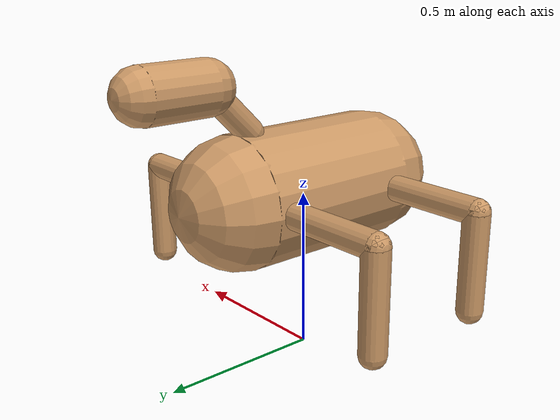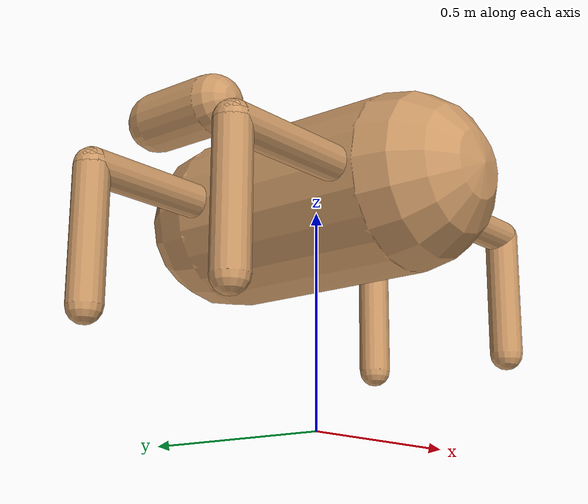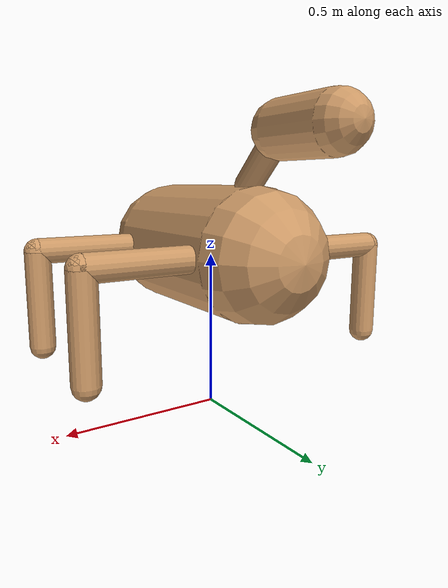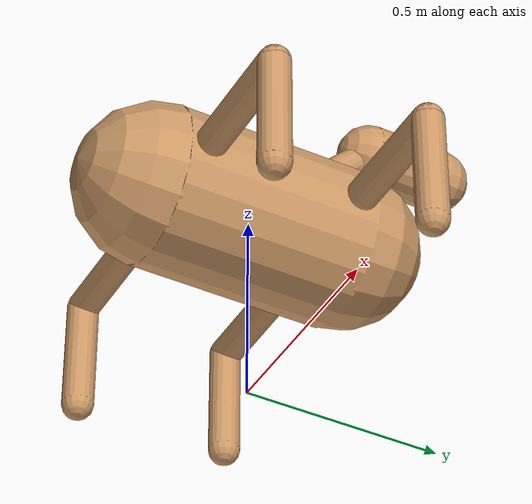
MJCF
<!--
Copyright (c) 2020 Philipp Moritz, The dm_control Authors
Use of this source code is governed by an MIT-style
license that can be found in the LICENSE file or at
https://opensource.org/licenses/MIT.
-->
<mujoco model="joe">
  <default>
    <motor ctrlrange="-1.0 1.0" ctrllimited="true" gear="75" />
    <geom friction="1 0.5 0.5" solref=".02 1" solimp="0 .8 .01" material="self" density="50.0" />
    <joint limited="true" armature="1" damping="1" stiffness="1" solreflimit=".04 1"
      solimplimit="0 .8 .03" />
    <default class="rangefinder">
      <site type="capsule" size=".05 .5" rgba="1 0 0 .4" group="4" />
    </default>
  </default>
  <asset>
    <material name="self" rgba=".8 .6 .4 1" />
    <texture name="grid" type="2d" builtin="checker" width="512" height="512" rgb1=".1 .2 .3"
      rgb2=".2 .3 .4" />
    <material name="grid" texture="grid" texrepeat="1 1" texuniform="true" reflectance=".2" />
  </asset>
  <worldbody>
    <camera name="sideon" pos="0 -10 5" fovy="45" mode="targetbody" target="torso" />
    <camera name="float_far" pos="-4 0 2" xyaxes="0 -1 0 .5 0 1" mode="trackcom" fovy="90" />
    <body name="torso" pos="0 0 0.522">
      <camera name="floating" pos="-2 0 1" xyaxes="0 -1 0 .5 0 1" mode="trackcom" fovy="90" />

      <site name="torso_touch" type="capsule" size="0.26" fromto="0 -0.25 0 0 0.25 0" rgba="0 0 1 1"
        group="4" />
      <geom name=":w
      torso_geom" type="capsule" size="0.2" fromto="0 -0.25 0 0 0.25 0"
        density="100.0" />
      <site name="torso_site" size="0.05" rgba="1 0 0 1" />

      <!-- sites that visualize the x-y axis of the ant body, good for debugging -->
      <site name="x_pos" type="capsule" pos="0.5 0 0" size=".05 .5" zaxis="1 0 0" rgba="1 0 0 1"
        group="5" />
      <site name="x_neg" type="capsule" pos="-0.5 0 0" size=".05 .5" zaxis="-1 0 0" rgba="0 0 1 1"
        group="5" />
      <site name="y_pos" type="capsule" pos="0 0.5 0" size=".05 .5" zaxis="0 1 0" rgba="1 1 1 1"
        group="5" />
      <site name="y_neg" type="capsule" pos="0 -0.5 0" size=".05 .5" zaxis="0 -1 0" rgba="0 0 0 1"
        group="5" />
      <site name="port_site" pos=".5 0 0" size="0.5" rgba="1 0 0 1" group="5" />
      <site name="starboard_site" pos="-.5 0 0" size="0.5" rgba="0 1 0 1" group="5" />

      <body name="neck" pos="0 0.2 0.2" euler="45 0 0">
        <geom name="neck_geom" type="capsule" size="0.04" fromto="0 0 0 0 0.20 0" />
        <body name="head" pos="0 0.20 0" euler="-45 0 0">
          <joint name="neck_x" axis="1 0 0" range="-60 60" />
          <joint name="neck_y" axis="0 1 0" range="-60 60 " />
          <joint name="neck_z" axis="0 0 1" range="-60 60" />
          <camera name="egocentric" pos="0 .3 0" xyaxes="1 0 0 0 0 1" fovy="90" />
          <geom name="head_geom" type="capsule" size="0.08" fromto="0 0 0 0 0.20 0" />
          <body name="rangefinder" pos="0 0 -0.1" euler="0 0 90">
            <site name="rf_00" class="rangefinder" fromto=".41 -.02  .11 .34 0 .115" />
            <site name="rf_01" class="rangefinder" fromto=".41 -.01  .11 .34 0 .115" />
            <site name="rf_02" class="rangefinder" fromto=".41   0   .11 .34 0 .115" />
            <site name="rf_03" class="rangefinder" fromto=".41  .01  .11 .34 0 .115" />
            <site name="rf_04" class="rangefinder" fromto=".41  .02  .11 .34 0 .115" />
            <site name="rf_10" class="rangefinder" fromto=".41 -.02  .1  .36 0 .11" />
            <site name="rf_11" class="rangefinder" fromto=".41 -.02  .1  .36 0 .11" />
            <site name="rf_12" class="rangefinder" fromto=".41   0   .1  .36 0 .11" />
            <site name="rf_13" class="rangefinder" fromto=".41  .01  .1  .36 0 .11" />
            <site name="rf_14" class="rangefinder" fromto=".41  .02  .1  .36 0 .11" />
            <site name="rf_20" class="rangefinder" fromto=".41 -.02  .09 .38 0 .105" />
            <site name="rf_21" class="rangefinder" fromto=".41 -.01  .09 .38 0 .105" />
            <site name="rf_22" class="rangefinder" fromto=".41   0   .09 .38 0 .105" />
            <site name="rf_23" class="rangefinder" fromto=".41  .01  .09 .38 0 .105" />
            <site name="rf_24" class="rangefinder" fromto=".41  .02  .09 .38 0 .105" />
            <site name="rf_30" class="rangefinder" fromto=".41 -.02  .08 .4  0 .1" />
            <site name="rf_31" class="rangefinder" fromto=".41 -.01  .08 .4  0 .1" />
            <site name="rf_32" class="rangefinder" fromto=".41   0   .08 .4  0 .1" />
            <site name="rf_33" class="rangefinder" fromto=".41  .01  .08 .4  0 .1" />
            <site name="rf_34" class="rangefinder" fromto=".41  .02  .08 .4  0 .1" />
          </body>
        </body>
      </body>
      <body name="front_left_leg" pos="0.2 0.2 0">
        <joint name="front_left_hip_x" axis="1 0 0" range="-60 60" />
        <joint name="front_left_hip_y" axis="0 1 0" range="-60 60" />
        <joint name="front_left_hip_z" axis="0 0 1" range="-60 60" />
        <geom name="front_left_leg_geom" type="capsule" size="0.04" fromto="0.0 0.0 0.0 0.3 0.0 0.0" />
        <site name="front_left_leg_touch" type="capsule" size="0.05" fromto="0 0 0 0.3 0 0"
          rgba="1 1 0 0" />
        <body name="front_left_foot" pos="0.3 0 0">
          <joint name="front_left_ankle" type="hinge" pos="0.0 0.0 0.0" axis="0 1 0" range="-60 60" />
          <geom name="front_left_ankle_geom" type="capsule" size="0.04"
            fromto="0.0 0.0 0.0 0 0 -0.3" />
          <site name="front_left_ankle_touch" type="capsule" size="0.05" fromto="0 0 0 0 0 -0.3"
            rgba="1 1 0 0" />
        </body>
      </body>
      <body name="front_right_leg" pos="-0.2 0.2 0">
        <joint name="front_right_hip_x" axis="1 0 0" range="-60 60" />
        <joint name="front_right_hip_y" axis="0 1 0" range="-60 60" />
        <joint name="front_right_hip_z" axis="0 0 1" range="-60 60" />
        <geom name="front_right_leg_geom" type="capsule" size="0.04"
          fromto="0.0 0.0 0.0 -0.3 0.0 0.0" />
        <site name="front_right_leg_touch" type="capsule" size="0.05" fromto="0 0 0 -0.3 0 0"
          rgba="1 1 0 0" />
        <body name="front_right_foot" pos="-0.3 0 0">
          <joint name="front_right_ankle" type="hinge" pos="0.0 0.0 0.0" axis="0 1 0" range="-60 60" />
          <geom name="front_right_ankle_geom" type="capsule" size="0.04"
            fromto="0.0 0.0 0.0 0 0 -0.3" />
          <site name="front_right_ankle_touch" type="capsule" size="0.05"
            fromto="0.0 0.0 0.0 0.0 0.0 -0.3" rgba="1 1 0 0" />
        </body>
      </body>

      <body name="back_left_leg" pos="0.2 -0.2 0">
        <joint name="back_left_hip_x" axis="1 0 0" range="-60 60" />
        <joint name="back_left_hip_y" axis="0 1 0" range="-60 60" />
        <joint name="back_left_hip_z" axis="0 0 1" range="-60 60" />
        <geom name="back_left_leg_geom" type="capsule" size="0.04" fromto="0.0 0.0 0.0 0.3 0.0 0.0" />
        <site name="back_left_leg_touch" type="capsule" size="0.05" fromto="0 0 0 0.3 0 0"
          rgba="1 1 0 0" />
        <body name="back_left_foot" pos="0.3 0 0">
          <joint name="back_left_ankle" type="hinge" pos="0.0 0.0 0.0" axis="0 1 0" range="-60 60" />
          <geom name="back_left_ankle_geom" type="capsule" size="0.04" fromto="0.0 0.0 0.0 0 0 -0.3" />
          <site name="back_left_ankle_touch" type="capsule" size="0.05" fromto="0 0 0 0 0 -0.3"
            rgba="1 1 0 0" />
        </body>
      </body>

      <body name="back_right_leg" pos="-0.2 -0.2 0">
        <joint name="back_right_hip_x" axis="1 0 0" range="-60 60" />
        <joint name="back_right_hip_y" axis="0 1 0" range="-60 60" />
        <joint name="back_right_hip_z" axis="0 0 1" range="-60 60" />
        <geom name="back_right_leg_geom" type="capsule" size="0.04"
          fromto="0.0 0.0 0.0 -0.3 0.0 0.0" />
        <site name="back_right_leg_touch" type="capsule" size="0.05" fromto="0 0 0 -0.3 0 0"
          rgba="1 1 0 0" />
        <body name="back_right_foot" pos="-0.3 0 0">
          <joint name="back_right_ankle" type="hinge" pos="0.0 0.0 0.0" axis="0 1 0" range="-60 60" />
          <geom name="back_right_ankle_geom" type="capsule" size="0.04"
            fromto="0.0 0.0 0.0 0 0 -0.3" />
          <site name="back_right_ankle_touch" type="capsule" size="0.05"
            fromto="0.0 0.0 0.0 0.0 0.0 -0.3" rgba="1 1 0 0" />
        </body>
      </body>

    </body>
  </worldbody>

  <actuator>
    <motor name="front_left_hip_x" joint="front_left_hip_x" />
    <motor name="front_left_hip_y" joint="front_left_hip_y" />
    <motor name="front_left_hip_z" joint="front_left_hip_z" />
    <motor name="front_left_ankle" joint="front_left_ankle" />
    <motor name="front_right_hip_x" joint="front_right_hip_x" />
    <motor name="front_right_hip_y" joint="front_right_hip_y" />
    <motor name="front_right_hip_z" joint="front_right_hip_z" />
    <motor name="front_right_ankle" joint="front_right_ankle" />
    <motor name="back_left_hip_x" joint="back_left_hip_x" />
    <motor name="back_left_hip_y" joint="back_left_hip_y" />
    <motor name="back_left_hip_z" joint="back_left_hip_z" />
    <motor name="back_left_ankle" joint="back_left_ankle" />
    <motor name="back_right_hip_x" joint="back_right_hip_x" />
    <motor name="back_right_hip_y" joint="back_right_hip_y" />
    <motor name="back_right_hip_z" joint="back_right_hip_z" />
    <motor name="back_right_ankle" joint="back_right_ankle" />
    <motor name="neck_x" joint="neck_x" />
    <motor name="neck_y" joint="neck_y" />
    <motor name="neck_z" joint="neck_z" />
  </actuator>

  <sensor>
    <touch name="torso_touch" site="torso_touch" />
    <touch name="front_left_leg_touch" site="front_left_leg_touch" />
    <touch name="front_left_ankle_touch" site="front_left_ankle_touch" />
    <touch name="front_right_leg_touch" site="front_right_leg_touch" />
    <touch name="front_right_ankle_touch" site="front_right_ankle_touch" />
    <touch name="back_left_leg_touch" site="back_left_leg_touch" />
    <touch name="back_left_ankle_touch" site="back_left_ankle_touch" />
    <touch name="back_right_leg_touch" site="back_right_leg_touch" />
    <touch name="back_right_ankle_touch" site="back_right_ankle_touch" />

    <torque name="front_left_leg_torque" site="front_left_leg_touch" />
    <torque name="front_left_ankle_torque" site="front_left_ankle_touch" />
    <torque name="front_right_leg_torque" site="front_right_leg_touch" />
    <torque name="front_right_ankle_torque" site="front_right_ankle_touch" />
    <torque name="back_left_leg_torque" site="back_left_leg_touch" />
    <torque name="back_left_ankle_torque" site="back_left_ankle_touch" />
    <torque name="back_right_leg_torque" site="back_right_leg_touch" />
    <torque name="back_right_ankle_torque" site="back_right_ankle_touch" />
    <force name="front_left_leg_force" site="front_left_leg_touch" />
    <force name="front_left_ankle_force" site="front_left_ankle_touch" />
    <force name="front_right_leg_force" site="front_right_leg_touch" />
    <force name="front_right_ankle_force" site="front_right_ankle_touch" />
    <force name="back_left_leg_force" site="back_left_leg_touch" />
    <force name="back_left_ankle_force" site="back_left_ankle_touch" />
    <force name="back_right_leg_force" site="back_right_leg_touch" />
    <force name="back_right_ankle_force" site="back_right_ankle_touch" />
    <velocimeter name="torso_vel" site="torso_site" />
    <gyro name="torso_gyro" site="torso_site" />
    <accelerometer name="torso_accel" site="torso_site" />
    <rangefinder name="rf_00" site="rf_00" />
    <rangefinder name="rf_01" site="rf_01" />
    <rangefinder name="rf_02" site="rf_02" />
    <rangefinder name="rf_03" site="rf_03" />
    <rangefinder name="rf_04" site="rf_04" />
    <rangefinder name="rf_10" site="rf_10" />
    <rangefinder name="rf_11" site="rf_11" />
    <rangefinder name="rf_12" site="rf_12" />
    <rangefinder name="rf_13" site="rf_13" />
    <rangefinder name="rf_14" site="rf_14" />
    <rangefinder name="rf_20" site="rf_20" />
    <rangefinder name="rf_21" site="rf_21" />
    <rangefinder name="rf_22" site="rf_22" />
    <rangefinder name="rf_23" site="rf_23" />
    <rangefinder name="rf_24" site="rf_24" />
    <rangefinder name="rf_30" site="rf_30" />
    <rangefinder name="rf_31" site="rf_31" />
    <rangefinder name="rf_32" site="rf_32" />
    <rangefinder name="rf_33" site="rf_33" />
    <rangefinder name="rf_34" site="rf_34" />

  </sensor>

  <contact>
    <exclude body1="torso" body2="front_left_leg" />
    <exclude body1="torso" body2="front_right_leg" />
    <exclude body1="torso" body2="back_left_leg" />
    <exclude body1="torso" body2="back_right_leg" />
    <exclude body1="neck" body2="head" />
  </contact>
</mujoco>
